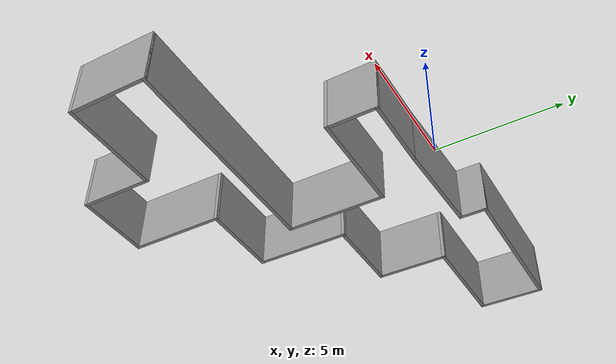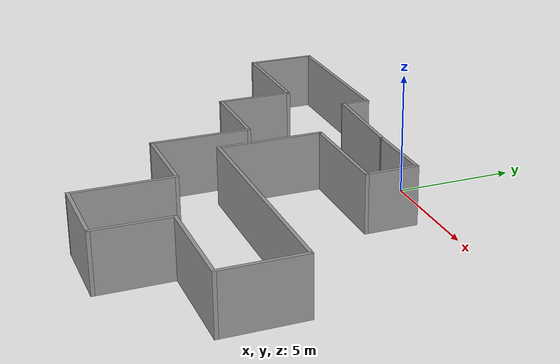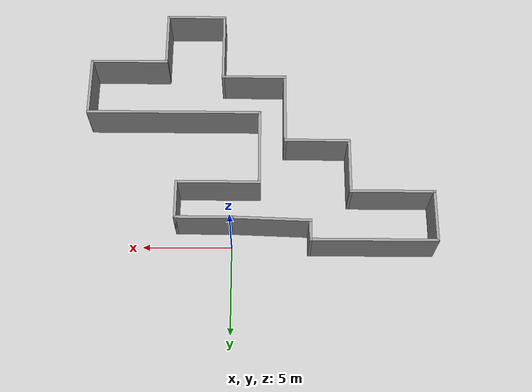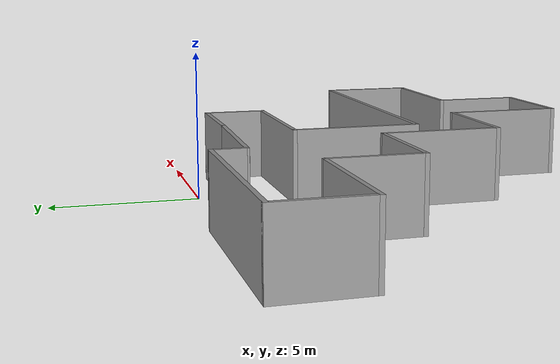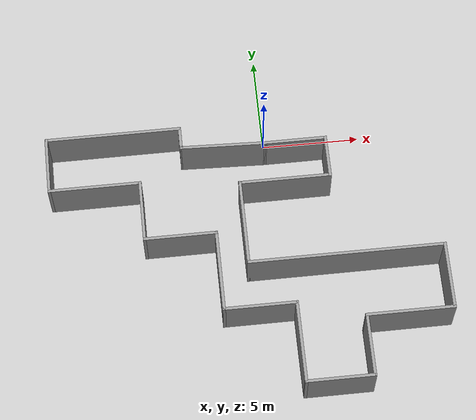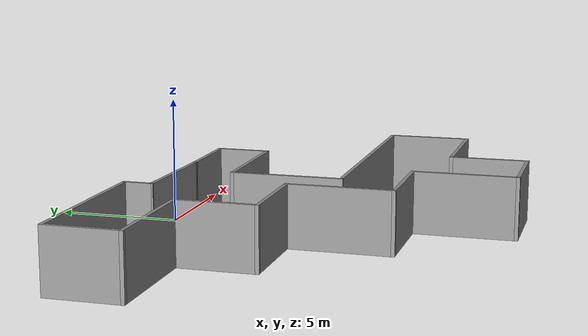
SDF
<?xml version='1.0'?>
<sdf version='1.7'>
  <model name='b55'>
    <pose>-1.41 -6.725 0 0 -0 0</pose>
    <link name='Wall_11'>
      <collision name='Wall_11_Collision'>
        <geometry>
          <box>
            <size>4.5 0.15 2.5</size>
          </box>
        </geometry>
        <pose>0 0 1.25 0 -0 0</pose>
      </collision>
      <visual name='Wall_11_Visual'>
        <pose>0 0 1.25 0 -0 0</pose>
        <geometry>
          <box>
            <size>4.5 0.15 2.5</size>
          </box>
        </geometry>
        <material>
          <script>
            <uri>file://media/materials/scripts/gazebo.material</uri>
            <name>Gazebo/Grey</name>
          </script>
          <ambient>1 1 1 1</ambient>
        </material>
        <meta>
          <layer>0</layer>
        </meta>
      </visual>
      <pose>7.575 -3.975 0 0 -0 3.14159</pose>
    </link>
    <link name='Wall_13'>
      <collision name='Wall_13_Collision'>
        <geometry>
          <box>
            <size>3.25 0.15 2.5</size>
          </box>
        </geometry>
        <pose>0 0 1.25 0 -0 0</pose>
      </collision>
      <visual name='Wall_13_Visual'>
        <pose>0 0 1.25 0 -0 0</pose>
        <geometry>
          <box>
            <size>3.25 0.15 2.5</size>
          </box>
        </geometry>
        <material>
          <script>
            <uri>file://media/materials/scripts/gazebo.material</uri>
            <name>Gazebo/Grey</name>
          </script>
          <ambient>1 1 1 1</ambient>
        </material>
        <meta>
          <layer>0</layer>
        </meta>
      </visual>
      <pose>5.4 -5.525 0 0 -0 -1.5708</pose>
    </link>
    <link name='Wall_15'>
      <collision name='Wall_15_Collision'>
        <geometry>
          <box>
            <size>3.5 0.15 2.5</size>
          </box>
        </geometry>
        <pose>0 0 1.25 0 -0 0</pose>
      </collision>
      <visual name='Wall_15_Visual'>
        <pose>0 0 1.25 0 -0 0</pose>
        <geometry>
          <box>
            <size>3.5 0.15 2.5</size>
          </box>
        </geometry>
        <material>
          <script>
            <uri>file://media/materials/scripts/gazebo.material</uri>
            <name>Gazebo/Grey</name>
          </script>
          <ambient>1 1 1 1</ambient>
        </material>
        <meta>
          <layer>0</layer>
        </meta>
      </visual>
      <pose>3.725 -7.075 0 0 -0 3.14159</pose>
    </link>
    <link name='Wall_17'>
      <collision name='Wall_17_Collision'>
        <geometry>
          <box>
            <size>4.25 0.15 2.5</size>
          </box>
        </geometry>
        <pose>0 0 1.25 0 -0 0</pose>
      </collision>
      <visual name='Wall_17_Visual'>
        <pose>0 0 1.25 0 -0 0</pose>
        <geometry>
          <box>
            <size>4.25 0.15 2.5</size>
          </box>
        </geometry>
        <material>
          <script>
            <uri>file://media/materials/scripts/gazebo.material</uri>
            <name>Gazebo/Grey</name>
          </script>
          <ambient>1 1 1 1</ambient>
        </material>
        <meta>
          <layer>0</layer>
        </meta>
      </visual>
      <pose>2.05 -5.025 0 0 -0 1.5708</pose>
    </link>
    <link name='Wall_19'>
      <collision name='Wall_19_Collision'>
        <geometry>
          <box>
            <size>3.75 0.15 2.5</size>
          </box>
        </geometry>
        <pose>0 0 1.25 0 -0 0</pose>
      </collision>
      <visual name='Wall_19_Visual'>
        <pose>0 0 1.25 0 -0 0</pose>
        <geometry>
          <box>
            <size>3.75 0.15 2.5</size>
          </box>
        </geometry>
        <material>
          <script>
            <uri>file://media/materials/scripts/gazebo.material</uri>
            <name>Gazebo/Grey</name>
          </script>
          <ambient>1 1 1 1</ambient>
        </material>
        <meta>
          <layer>0</layer>
        </meta>
      </visual>
      <pose>0.25 -2.975 0 0 -0 3.14159</pose>
    </link>
    <link name='Wall_2'>
      <collision name='Wall_2_Collision'>
        <geometry>
          <box>
            <size>3.25 0.15 2.5</size>
          </box>
        </geometry>
        <pose>0 0 1.25 0 -0 0</pose>
      </collision>
      <visual name='Wall_2_Visual'>
        <pose>0 0 1.25 0 -0 0</pose>
        <geometry>
          <box>
            <size>3.25 0.15 2.5</size>
          </box>
        </geometry>
        <material>
          <script>
            <uri>file://media/materials/scripts/gazebo.material</uri>
            <name>Gazebo/Grey</name>
          </script>
          <ambient>1 1 1 1</ambient>
        </material>
        <meta>
          <layer>0</layer>
        </meta>
      </visual>
      <pose>2.95 5.825 0 0 -0 0</pose>
    </link>
    <link name='Wall_21'>
      <collision name='Wall_21_Collision'>
        <geometry>
          <box>
            <size>4.25 0.15 2.5</size>
          </box>
        </geometry>
        <pose>0 0 1.25 0 -0 0</pose>
      </collision>
      <visual name='Wall_21_Visual'>
        <pose>0 0 1.25 0 -0 0</pose>
        <geometry>
          <box>
            <size>4.25 0.15 2.5</size>
          </box>
        </geometry>
        <material>
          <script>
            <uri>file://media/materials/scripts/gazebo.material</uri>
            <name>Gazebo/Grey</name>
          </script>
          <ambient>1 1 1 1</ambient>
        </material>
        <meta>
          <layer>0</layer>
        </meta>
      </visual>
      <pose>-1.55 -0.925 0 0 -0 1.5708</pose>
    </link>
    <link name='Wall_24'>
      <collision name='Wall_24_Collision'>
        <geometry>
          <box>
            <size>3.75 0.15 2.5</size>
          </box>
        </geometry>
        <pose>0 0 1.25 0 -0 0</pose>
      </collision>
      <visual name='Wall_24_Visual'>
        <pose>0 0 1.25 0 -0 0</pose>
        <geometry>
          <box>
            <size>3.75 0.15 2.5</size>
          </box>
        </geometry>
        <material>
          <script>
            <uri>file://media/materials/scripts/gazebo.material</uri>
            <name>Gazebo/Grey</name>
          </script>
          <ambient>1 1 1 1</ambient>
        </material>
        <meta>
          <layer>0</layer>
        </meta>
      </visual>
      <pose>-3.35 1.125 0 0 -0 3.14159</pose>
    </link>
    <link name='Wall_26'>
      <collision name='Wall_26_Collision'>
        <geometry>
          <box>
            <size>3.25 0.15 2.5</size>
          </box>
        </geometry>
        <pose>0 0 1.25 0 -0 0</pose>
      </collision>
      <visual name='Wall_26_Visual'>
        <pose>0 0 1.25 0 -0 0</pose>
        <geometry>
          <box>
            <size>3.25 0.15 2.5</size>
          </box>
        </geometry>
        <material>
          <script>
            <uri>file://media/materials/scripts/gazebo.material</uri>
            <name>Gazebo/Grey</name>
          </script>
          <ambient>1 1 1 1</ambient>
        </material>
        <meta>
          <layer>0</layer>
        </meta>
      </visual>
      <pose>-5.15 2.675 0 0 -0 1.5708</pose>
    </link>
    <link name='Wall_28'>
      <collision name='Wall_28_Collision'>
        <geometry>
          <box>
            <size>4.75 0.15 2.5</size>
          </box>
        </geometry>
        <pose>0 0 1.25 0 -0 0</pose>
      </collision>
      <visual name='Wall_28_Visual'>
        <pose>0 0 1.25 0 -0 0</pose>
        <geometry>
          <box>
            <size>4.75 0.15 2.5</size>
          </box>
        </geometry>
        <material>
          <script>
            <uri>file://media/materials/scripts/gazebo.material</uri>
            <name>Gazebo/Grey</name>
          </script>
          <ambient>1 1 1 1</ambient>
        </material>
        <meta>
          <layer>0</layer>
        </meta>
      </visual>
      <pose>-7.45 4.225 0 0 -0 3.14159</pose>
    </link>
    <link name='Wall_29'>
      <collision name='Wall_29_Collision'>
        <geometry>
          <box>
            <size>3 0.15 2.5</size>
          </box>
        </geometry>
        <pose>0 0 1.25 0 -0 0</pose>
      </collision>
      <visual name='Wall_29_Visual'>
        <pose>0 0 1.25 0 -0 0</pose>
        <geometry>
          <box>
            <size>3 0.15 2.5</size>
          </box>
        </geometry>
        <material>
          <script>
            <uri>file://media/materials/scripts/gazebo.material</uri>
            <name>Gazebo/Grey</name>
          </script>
          <ambient>1 1 1 1</ambient>
        </material>
        <meta>
          <layer>0</layer>
        </meta>
      </visual>
      <pose>-9.75 5.65 0 0 -0 1.5708</pose>
    </link>
    <link name='Wall_3'>
      <collision name='Wall_3_Collision'>
        <geometry>
          <box>
            <size>2.25 0.15 2.5</size>
          </box>
        </geometry>
        <pose>0 0 1.25 0 -0 0</pose>
      </collision>
      <visual name='Wall_3_Visual'>
        <pose>0 0 1.25 0 -0 0</pose>
        <geometry>
          <box>
            <size>2.25 0.15 2.5</size>
          </box>
        </geometry>
        <material>
          <script>
            <uri>file://media/materials/scripts/gazebo.material</uri>
            <name>Gazebo/Grey</name>
          </script>
          <ambient>1 1 1 1</ambient>
        </material>
        <meta>
          <layer>0</layer>
        </meta>
      </visual>
      <pose>4.5 4.775 0 0 -0 -1.5708</pose>
    </link>
    <link name='Wall_30'>
      <collision name='Wall_30_Collision'>
        <geometry>
          <box>
            <size>7 0.15 2.5</size>
          </box>
        </geometry>
        <pose>0 0 1.25 0 -0 0</pose>
      </collision>
      <visual name='Wall_30_Visual'>
        <pose>0 0 1.25 0 -0 0</pose>
        <geometry>
          <box>
            <size>7 0.15 2.5</size>
          </box>
        </geometry>
        <material>
          <script>
            <uri>file://media/materials/scripts/gazebo.material</uri>
            <name>Gazebo/Grey</name>
          </script>
          <ambient>1 1 1 1</ambient>
        </material>
        <meta>
          <layer>0</layer>
        </meta>
      </visual>
      <pose>-6.325 7.075 0 0 -0 0</pose>
    </link>
    <link name='Wall_31'>
      <collision name='Wall_31_Collision'>
        <geometry>
          <box>
            <size>1.25 0.15 2.5</size>
          </box>
        </geometry>
        <pose>0 0 1.25 0 -0 0</pose>
      </collision>
      <visual name='Wall_31_Visual'>
        <pose>0 0 1.25 0 -0 0</pose>
        <geometry>
          <box>
            <size>1.25 0.15 2.5</size>
          </box>
        </geometry>
        <material>
          <script>
            <uri>file://media/materials/scripts/gazebo.material</uri>
            <name>Gazebo/Grey</name>
          </script>
          <ambient>1 1 1 1</ambient>
        </material>
        <meta>
          <layer>0</layer>
        </meta>
      </visual>
      <pose>-2.9 6.525 0 0 -0 -1.5708</pose>
    </link>
    <link name='Wall_32'>
      <collision name='Wall_32_Collision'>
        <geometry>
          <box>
            <size>4.45261 0.15 2.5</size>
          </box>
        </geometry>
        <pose>0 0 1.25 0 -0 0</pose>
      </collision>
      <visual name='Wall_32_Visual'>
        <pose>0 0 1.25 0 -0 0</pose>
        <geometry>
          <box>
            <size>4.45261 0.15 2.5</size>
          </box>
        </geometry>
        <material>
          <script>
            <uri>file://media/materials/scripts/gazebo.material</uri>
            <name>Gazebo/Grey</name>
          </script>
          <ambient>1 1 1 1</ambient>
        </material>
        <meta>
          <layer>0</layer>
        </meta>
      </visual>
      <pose>-0.75 5.9 0 0 -0 -0.03487</pose>
    </link>
    <link name='Wall_4'>
      <collision name='Wall_4_Collision'>
        <geometry>
          <box>
            <size>4.75 0.15 2.5</size>
          </box>
        </geometry>
        <pose>0 0 1.25 0 -0 0</pose>
      </collision>
      <visual name='Wall_4_Visual'>
        <pose>0 0 1.25 0 -0 0</pose>
        <geometry>
          <box>
            <size>4.75 0.15 2.5</size>
          </box>
        </geometry>
        <material>
          <script>
            <uri>file://media/materials/scripts/gazebo.material</uri>
            <name>Gazebo/Grey</name>
          </script>
          <ambient>1 1 1 1</ambient>
        </material>
        <meta>
          <layer>0</layer>
        </meta>
      </visual>
      <pose>2.2 3.725 0 0 -0 3.14159</pose>
    </link>
    <link name='Wall_5'>
      <collision name='Wall_5_Collision'>
        <geometry>
          <box>
            <size>4.5 0.15 2.5</size>
          </box>
        </geometry>
        <pose>0 0 1.25 0 -0 0</pose>
      </collision>
      <visual name='Wall_5_Visual'>
        <pose>0 0 1.25 0 -0 0</pose>
        <geometry>
          <box>
            <size>4.5 0.15 2.5</size>
          </box>
        </geometry>
        <material>
          <script>
            <uri>file://media/materials/scripts/gazebo.material</uri>
            <name>Gazebo/Grey</name>
          </script>
          <ambient>1 1 1 1</ambient>
        </material>
        <meta>
          <layer>0</layer>
        </meta>
      </visual>
      <pose>-0.1 1.55 0 0 -0 -1.5708</pose>
    </link>
    <link name='Wall_7'>
      <collision name='Wall_7_Collision'>
        <geometry>
          <box>
            <size>10 0.15 2.5</size>
          </box>
        </geometry>
        <pose>0 0 1.25 0 -0 0</pose>
      </collision>
      <visual name='Wall_7_Visual'>
        <pose>0 0 1.25 0 -0 0</pose>
        <geometry>
          <box>
            <size>10 0.15 2.5</size>
          </box>
        </geometry>
        <material>
          <script>
            <uri>file://media/materials/scripts/gazebo.material</uri>
            <name>Gazebo/Grey</name>
          </script>
          <ambient>1 1 1 1</ambient>
        </material>
        <meta>
          <layer>0</layer>
        </meta>
      </visual>
      <pose>4.825 -0.625 0 0 -0 0</pose>
    </link>
    <link name='Wall_9'>
      <collision name='Wall_9_Collision'>
        <geometry>
          <box>
            <size>3.5 0.15 2.5</size>
          </box>
        </geometry>
        <pose>0 0 1.25 0 -0 0</pose>
      </collision>
      <visual name='Wall_9_Visual'>
        <pose>0 0 1.25 0 -0 0</pose>
        <geometry>
          <box>
            <size>3.5 0.15 2.5</size>
          </box>
        </geometry>
        <material>
          <script>
            <uri>file://media/materials/scripts/gazebo.material</uri>
            <name>Gazebo/Grey</name>
          </script>
          <ambient>1 1 1 1</ambient>
        </material>
        <meta>
          <layer>0</layer>
        </meta>
      </visual>
      <pose>9.75 -2.3 0 0 -0 -1.5708</pose>
    </link>
    <static>1</static>
  </model>
</sdf>
